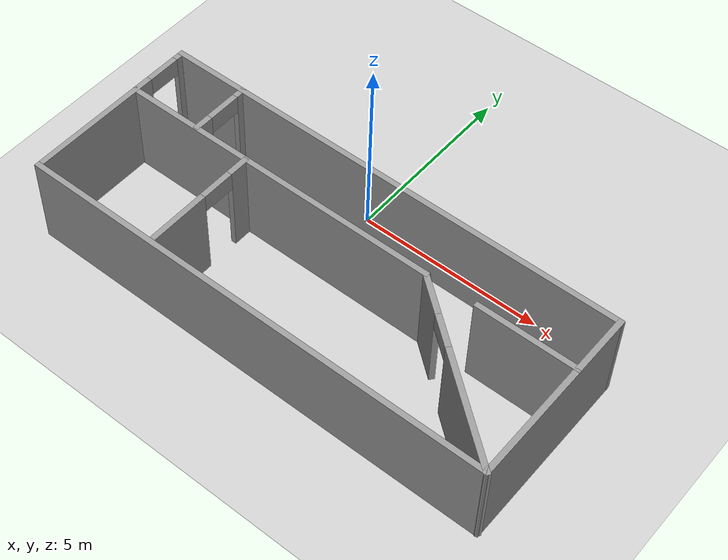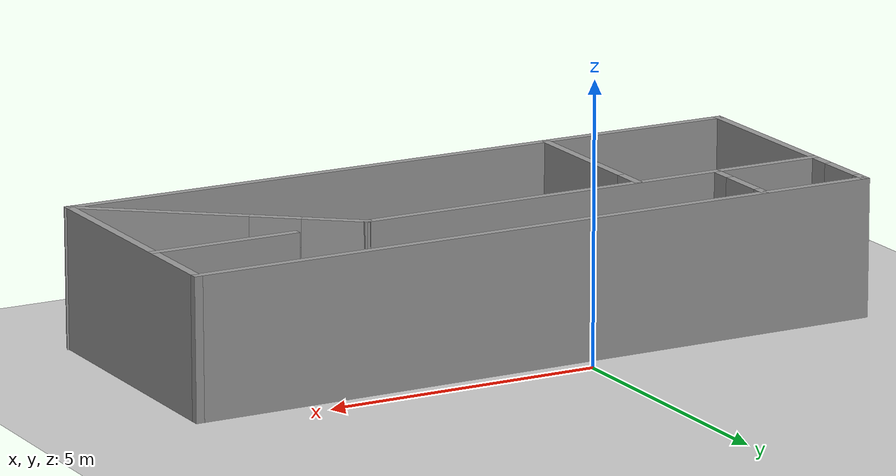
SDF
<?xml version="1.0"?>
<sdf version="1.4">
    <!-- We use a custom world for the rrbot so that the camera angle is launched correctly -->

    <world name="default">

        <include>
            <uri>model://ground_plane</uri>
        </include>

        <!-- Global light source -->
        <include>
            <uri>model://sun</uri>
        </include>

        <include>
            <uri>model://house</uri>
        </include>
        <!-- Focus camera on tall pendulum -->

    </world>
</sdf>

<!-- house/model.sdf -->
<sdf version='1.7'>
  <model name='house'>
    <pose>0.807724 -2.69347 0 0 -0 0</pose>
    <link name='Wall_0'>
      <pose>-6.44022 -0.163026 0 0 -0 -1.5708</pose>
      <visual name='Wall_0_Visual_0'>
        <pose>-2.33675 0 1.25 0 -0 0</pose>
        <geometry>
          <box>
            <size>0.3265 0.15 2.5</size>
          </box>
        </geometry>
        <material>
          <script>
            <uri>file://media/materials/scripts/gazebo.material</uri>
            <name>Gazebo/Grey</name>
          </script>
          <ambient>1 1 1 1</ambient>
        </material>
        <meta>
          <layer>0</layer>
        </meta>
      </visual>
      <collision name='Wall_0_Collision_0'>
        <geometry>
          <box>
            <size>0.3265 0.15 2.5</size>
          </box>
        </geometry>
        <pose>-2.33675 0 1.25 0 -0 0</pose>
      </collision>
      <visual name='Wall_0_Visual_1'>
        <pose>0.61325 0 1.25 0 -0 0</pose>
        <geometry>
          <box>
            <size>3.7735 0.15 2.5</size>
          </box>
        </geometry>
        <material>
          <script>
            <uri>file://media/materials/scripts/gazebo.material</uri>
            <name>Gazebo/Grey</name>
          </script>
          <ambient>1 1 1 1</ambient>
        </material>
        <meta>
          <layer>0</layer>
        </meta>
      </visual>
      <collision name='Wall_0_Collision_1'>
        <geometry>
          <box>
            <size>3.7735 0.15 2.5</size>
          </box>
        </geometry>
        <pose>0.61325 0 1.25 0 -0 0</pose>
      </collision>
      <visual name='Wall_0_Visual_2'>
        <pose>-1.7235 0 2.25 0 -0 0</pose>
        <geometry>
          <box>
            <size>0.9 0.15 0.5</size>
          </box>
        </geometry>
        <material>
          <script>
            <uri>file://media/materials/scripts/gazebo.material</uri>
            <name>Gazebo/Grey</name>
          </script>
          <ambient>1 1 1 1</ambient>
        </material>
        <meta>
          <layer>0</layer>
        </meta>
      </visual>
      <collision name='Wall_0_Collision_2'>
        <geometry>
          <box>
            <size>0.9 0.15 0.5</size>
          </box>
        </geometry>
        <pose>-1.7235 0 2.25 0 -0 0</pose>
      </collision>
    </link>
    <link name='Wall_1'>
      <collision name='Wall_1_Collision'>
        <geometry>
          <box>
            <size>13 0.15 2.5</size>
          </box>
        </geometry>
        <pose>0 0 1.25 0 -0 0</pose>
      </collision>
      <visual name='Wall_1_Visual'>
        <pose>0 0 1.25 0 -0 0</pose>
        <geometry>
          <box>
            <size>13 0.15 2.5</size>
          </box>
        </geometry>
        <material>
          <script>
            <uri>file://media/materials/scripts/gazebo.material</uri>
            <name>Gazebo/Grey</name>
          </script>
          <ambient>1 1 1 1</ambient>
        </material>
        <meta>
          <layer>0</layer>
        </meta>
      </visual>
      <pose>-0.015224 -2.58803 0 0 -0 0</pose>
    </link>
    <link name='Wall_10'>
      <collision name='Wall_10_Collision'>
        <geometry>
          <box>
            <size>2.75 0.15 2.5</size>
          </box>
        </geometry>
        <pose>0 0 1.25 0 -0 0</pose>
      </collision>
      <visual name='Wall_10_Visual'>
        <pose>0 0 1.25 0 -0 0</pose>
        <geometry>
          <box>
            <size>2.75 0.15 2.5</size>
          </box>
        </geometry>
        <material>
          <script>
            <uri>file://media/materials/scripts/gazebo.material</uri>
            <name>Gazebo/Grey</name>
          </script>
          <ambient>1 1 1 1</ambient>
        </material>
        <meta>
          <layer>0</layer>
        </meta>
      </visual>
      <pose>5.10628 0.663474 0 0 -0 0</pose>
    </link>
    <link name='Wall_12'>
      <pose>-4.43922 1.46197 0 0 -0 -1.5708</pose>
      <visual name='Wall_12_Visual_0'>
        <pose>-0.706 0 1.25 0 -0 0</pose>
        <geometry>
          <box>
            <size>0.338 0.15 2.5</size>
          </box>
        </geometry>
        <material>
          <script>
            <uri>file://media/materials/scripts/gazebo.material</uri>
            <name>Gazebo/Grey</name>
          </script>
          <ambient>1 1 1 1</ambient>
        </material>
        <meta>
          <layer>0</layer>
        </meta>
      </visual>
      <collision name='Wall_12_Collision_0'>
        <geometry>
          <box>
            <size>0.338 0.15 2.5</size>
          </box>
        </geometry>
        <pose>-0.706 0 1.25 0 -0 0</pose>
      </collision>
      <visual name='Wall_12_Visual_1'>
        <pose>0.619 0 1.25 0 -0 0</pose>
        <geometry>
          <box>
            <size>0.512 0.15 2.5</size>
          </box>
        </geometry>
        <material>
          <script>
            <uri>file://media/materials/scripts/gazebo.material</uri>
            <name>Gazebo/Grey</name>
          </script>
          <ambient>1 1 1 1</ambient>
        </material>
        <meta>
          <layer>0</layer>
        </meta>
      </visual>
      <collision name='Wall_12_Collision_1'>
        <geometry>
          <box>
            <size>0.512 0.15 2.5</size>
          </box>
        </geometry>
        <pose>0.619 0 1.25 0 -0 0</pose>
      </collision>
      <visual name='Wall_12_Visual_2'>
        <pose>-0.087 0 2.25 0 -0 0</pose>
        <geometry>
          <box>
            <size>0.9 0.15 0.5</size>
          </box>
        </geometry>
        <material>
          <script>
            <uri>file://media/materials/scripts/gazebo.material</uri>
            <name>Gazebo/Grey</name>
          </script>
          <ambient>1 1 1 1</ambient>
        </material>
        <meta>
          <layer>0</layer>
        </meta>
      </visual>
      <collision name='Wall_12_Collision_2'>
        <geometry>
          <box>
            <size>0.9 0.15 0.5</size>
          </box>
        </geometry>
        <pose>-0.087 0 2.25 0 -0 0</pose>
      </collision>
    </link>
    <link name='Wall_2'>
      <collision name='Wall_2_Collision'>
        <geometry>
          <box>
            <size>5 0.15 2.5</size>
          </box>
        </geometry>
        <pose>0 0 1.25 0 -0 0</pose>
      </collision>
      <visual name='Wall_2_Visual'>
        <pose>0 0 1.25 0 -0 0</pose>
        <geometry>
          <box>
            <size>5 0.15 2.5</size>
          </box>
        </geometry>
        <material>
          <script>
            <uri>file://media/materials/scripts/gazebo.material</uri>
            <name>Gazebo/Grey</name>
          </script>
          <ambient>1 1 1 1</ambient>
        </material>
        <meta>
          <layer>0</layer>
        </meta>
      </visual>
      <pose>6.40978 -0.163026 0 0 -0 1.5708</pose>
    </link>
    <link name='Wall_3'>
      <collision name='Wall_3_Collision'>
        <geometry>
          <box>
            <size>13 0.15 2.5</size>
          </box>
        </geometry>
        <pose>0 0 1.25 0 -0 0</pose>
      </collision>
      <visual name='Wall_3_Visual'>
        <pose>0 0 1.25 0 -0 0</pose>
        <geometry>
          <box>
            <size>13 0.15 2.5</size>
          </box>
        </geometry>
        <material>
          <script>
            <uri>file://media/materials/scripts/gazebo.material</uri>
            <name>Gazebo/Grey</name>
          </script>
          <ambient>1 1 1 1</ambient>
        </material>
        <meta>
          <layer>0</layer>
        </meta>
      </visual>
      <pose>-0.015224 2.26197 0 0 -0 3.14159</pose>
    </link>
    <link name='Wall_5'>
      <collision name='Wall_5_Collision'>
        <geometry>
          <box>
            <size>9 0.15 2.5</size>
          </box>
        </geometry>
        <pose>0 0 1.25 0 -0 0</pose>
      </collision>
      <visual name='Wall_5_Visual'>
        <pose>0 0 1.25 0 -0 0</pose>
        <geometry>
          <box>
            <size>9 0.15 2.5</size>
          </box>
        </geometry>
        <material>
          <script>
            <uri>file://media/materials/scripts/gazebo.material</uri>
            <name>Gazebo/Grey</name>
          </script>
          <ambient>1 1 1 1</ambient>
        </material>
        <meta>
          <layer>0</layer>
        </meta>
      </visual>
      <pose>-2.01522 0.628974 0 0 -0 0</pose>
    </link>
    <link name='Wall_6'>
      <pose>4.40978 -0.979526 0 0 -0 -0.677327</pose>
      <visual name='Wall_6_Visual_0'>
        <pose>-2.04664 0 1.25 0 -0 0</pose>
        <geometry>
          <box>
            <size>1.18985 0.15 2.5</size>
          </box>
        </geometry>
        <material>
          <script>
            <uri>file://media/materials/scripts/gazebo.material</uri>
            <name>Gazebo/Grey</name>
          </script>
          <ambient>1 1 1 1</ambient>
        </material>
        <meta>
          <layer>0</layer>
        </meta>
      </visual>
      <collision name='Wall_6_Collision_0'>
        <geometry>
          <box>
            <size>1.18985 0.15 2.5</size>
          </box>
        </geometry>
        <pose>-2.04664 0 1.25 0 -0 0</pose>
      </collision>
      <visual name='Wall_6_Visual_1'>
        <pose>1.04493 0 1.25 0 -0 0</pose>
        <geometry>
          <box>
            <size>3.19329 0.15 2.5</size>
          </box>
        </geometry>
        <material>
          <script>
            <uri>file://media/materials/scripts/gazebo.material</uri>
            <name>Gazebo/Grey</name>
          </script>
          <ambient>1 1 1 1</ambient>
        </material>
        <meta>
          <layer>0</layer>
        </meta>
      </visual>
      <collision name='Wall_6_Collision_1'>
        <geometry>
          <box>
            <size>3.19329 0.15 2.5</size>
          </box>
        </geometry>
        <pose>1.04493 0 1.25 0 -0 0</pose>
      </collision>
      <visual name='Wall_6_Visual_2'>
        <pose>-1.00172 0 2.25 0 -0 0</pose>
        <geometry>
          <box>
            <size>0.9 0.15 0.5</size>
          </box>
        </geometry>
        <material>
          <script>
            <uri>file://media/materials/scripts/gazebo.material</uri>
            <name>Gazebo/Grey</name>
          </script>
          <ambient>1 1 1 1</ambient>
        </material>
        <meta>
          <layer>0</layer>
        </meta>
      </visual>
      <collision name='Wall_6_Collision_2'>
        <geometry>
          <box>
            <size>0.9 0.15 0.5</size>
          </box>
        </geometry>
        <pose>-1.00172 0 2.25 0 -0 0</pose>
      </collision>
    </link>
    <link name='Wall_8'>
      <pose>-2.87522 -0.967026 0 0 -0 -1.5708</pose>
      <visual name='Wall_8_Visual_0'>
        <pose>-1.32375 0 1.25 0 -0 0</pose>
        <geometry>
          <box>
            <size>0.6025 0.15 2.5</size>
          </box>
        </geometry>
        <material>
          <script>
            <uri>file://media/materials/scripts/gazebo.material</uri>
            <name>Gazebo/Grey</name>
          </script>
          <ambient>1 1 1 1</ambient>
        </material>
        <meta>
          <layer>0</layer>
        </meta>
      </visual>
      <collision name='Wall_8_Collision_0'>
        <geometry>
          <box>
            <size>0.6025 0.15 2.5</size>
          </box>
        </geometry>
        <pose>-1.32375 0 1.25 0 -0 0</pose>
      </collision>
      <visual name='Wall_8_Visual_1'>
        <pose>0.75125 0 1.25 0 -0 0</pose>
        <geometry>
          <box>
            <size>1.7475 0.15 2.5</size>
          </box>
        </geometry>
        <material>
          <script>
            <uri>file://media/materials/scripts/gazebo.material</uri>
            <name>Gazebo/Grey</name>
          </script>
          <ambient>1 1 1 1</ambient>
        </material>
        <meta>
          <layer>0</layer>
        </meta>
      </visual>
      <collision name='Wall_8_Collision_1'>
        <geometry>
          <box>
            <size>1.7475 0.15 2.5</size>
          </box>
        </geometry>
        <pose>0.75125 0 1.25 0 -0 0</pose>
      </collision>
      <visual name='Wall_8_Visual_2'>
        <pose>-0.5725 0 2.25 0 -0 0</pose>
        <geometry>
          <box>
            <size>0.9 0.15 0.5</size>
          </box>
        </geometry>
        <material>
          <script>
            <uri>file://media/materials/scripts/gazebo.material</uri>
            <name>Gazebo/Grey</name>
          </script>
          <ambient>1 1 1 1</ambient>
        </material>
        <meta>
          <layer>0</layer>
        </meta>
      </visual>
      <collision name='Wall_8_Collision_2'>
        <geometry>
          <box>
            <size>0.9 0.15 0.5</size>
          </box>
        </geometry>
        <pose>-0.5725 0 2.25 0 -0 0</pose>
      </collision>
    </link>
    <static>1</static>
  </model>
</sdf>
